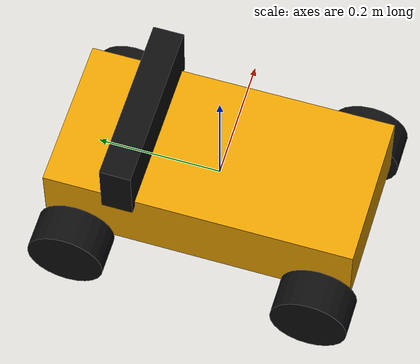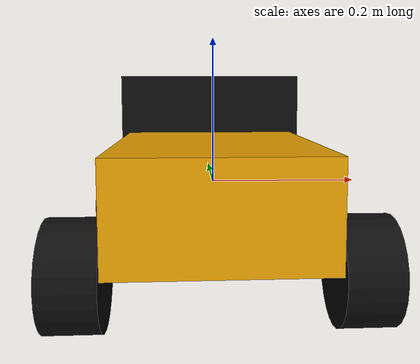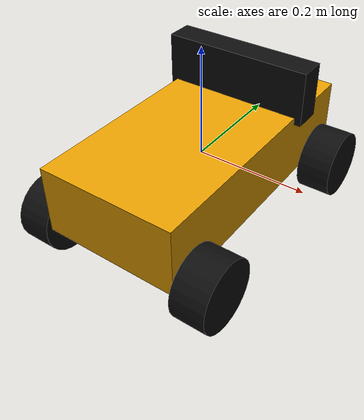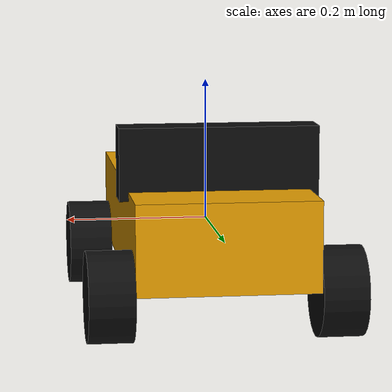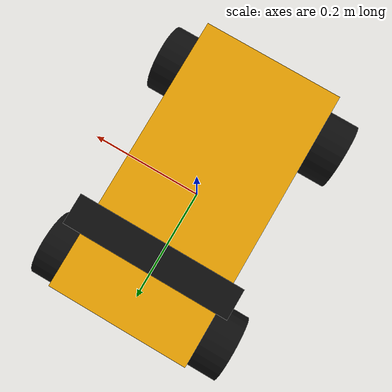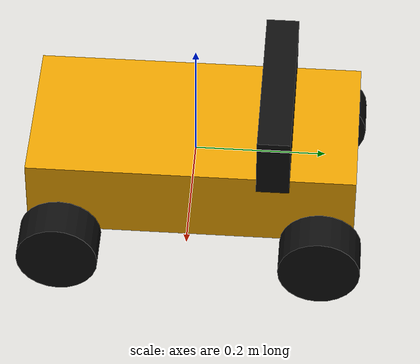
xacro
<?xml version="1.0"?>
<robot xmlns:xacro="http://www.ros.org/wiki/xacro" name="gudrun">

	<material name="black">
		<color rgba=".05 .05 .05 1"/>
	</material>

	<xacro:property name="width" value="0.25"/>
	<xacro:property name="length" value="0.5"/>
	<xacro:property name="height" value="0.125"/>

	<xacro:property name="wheel_width" value="0.0625" />
	<xacro:property name="wheel_radius" value="0.0625" />

	<link name="base_link">
		<visual>
			<geometry>
				<box size="${width} ${length} ${height}"/>
			</geometry>
		</visual>
		<collision>
			<geometry>
				<box size="${width} ${length} ${height}"/>
			</geometry>
		</collision>
		<inertial>
			<mass value="3"/>
			<inertia ixx="0.001" ixy="0.0" ixz="0.0" iyy="0.001" iyz="0.0" izz="0.001"/>
		</inertial>
	</link>

	<xacro:macro name="wheel" params="suffix *origin">
		<link name="wheel_${suffix}">
			<visual>
				<geometry>
					<cylinder length="${wheel_width}" radius="${wheel_radius}"/>
				</geometry>
				<material name="black"/>
			</visual>
			<collision>
				<geometry>
					<cylinder length="${wheel_width}" radius="${wheel_radius}"/>
				</geometry>
			</collision>
			<inertial>
				<mass value=".1"/>
				<inertia ixx="0.001" ixy="0.0" ixz="0.0" iyy="0.001" iyz="0.0" izz="0.001"/>
			</inertial>
		</link>
		<joint name="base_link_to_wheel_${suffix}" type="continuous">
			<axis xyz="0 0 1" />
			<parent link="base_link"/>
			<child link="wheel_${suffix}"/>
			<xacro:insert_block name="origin" />
			<contact_coefficients mu="0.1" />
		</joint>

		<transmission name="${suffix}_trans">
			<type>transmission_interface/SimpleTransmission</type>
			<actuator name="${suffix}_motor">
				<mechanicalReduction>1</mechanicalReduction>
			</actuator>
			<joint name="base_link_to_wheel_${suffix}">
				<hardwareInterface>hardware_interface/VelocityJointInterface</hardwareInterface>
			</joint>
		</transmission>
		<gazebo reference="${suffix}_wheel">
			<mu1 value="200.0"/>
			<mu2 value="100.0"/>
			<kp value="10000000.0" />
			<kd value="1.0" />
			<material>Gazebo/Grey</material>
		</gazebo>
	</xacro:macro>

	<xacro:wheel suffix="left_front">
		<origin xyz="${-width/2-wheel_width/2} .2 -.07" rpy="0 1.57080 0"/>
	</xacro:wheel>
	<xacro:wheel suffix="right_front">
		<origin xyz="${width/2+wheel_width/2} .2 -.07" rpy="0 1.57080 0"/>
	</xacro:wheel>
	<xacro:wheel suffix="left_rear">
		<origin xyz="${-width/2-wheel_width/2} -.2 -.07" rpy="0 1.57080 0"/>
	</xacro:wheel>
	<xacro:wheel suffix="right_rear">
		<origin xyz="${width/2+wheel_width/2} -.2 -.07" rpy="0 1.57080 0"/>
	</xacro:wheel>

	<link name="kinect">
		<visual>
			<geometry
>				<box size="${width*1.1} .05 .1"/>
			</geometry>
			<material name="black"/>
		</visual>
		<collision>
			<geometry>
				<box size="${width*1.5} 0.08 0.12"/>
			</geometry>
		</collision>
		<inertial>
			<mass value=".5"/>
			<inertia ixx="0.001" ixy="0.0" ixz="0.0" iyy="0.001" iyz="0.0" izz="0.001"/>
		</inertial>
	</link>
	<joint name="base_to_kinect" type="fixed" >
		<parent link="base_link"/>
		<child link="kinect"/>
		<origin xyz="0 .125 .1"/>
	</joint>

<gazebo>
	<plugin name="gazebo_ros_control" filename="libgazebo_ros_control.so">
		<robotNamespace>/</robotNamespace>
	</plugin>
</gazebo>

</robot>
